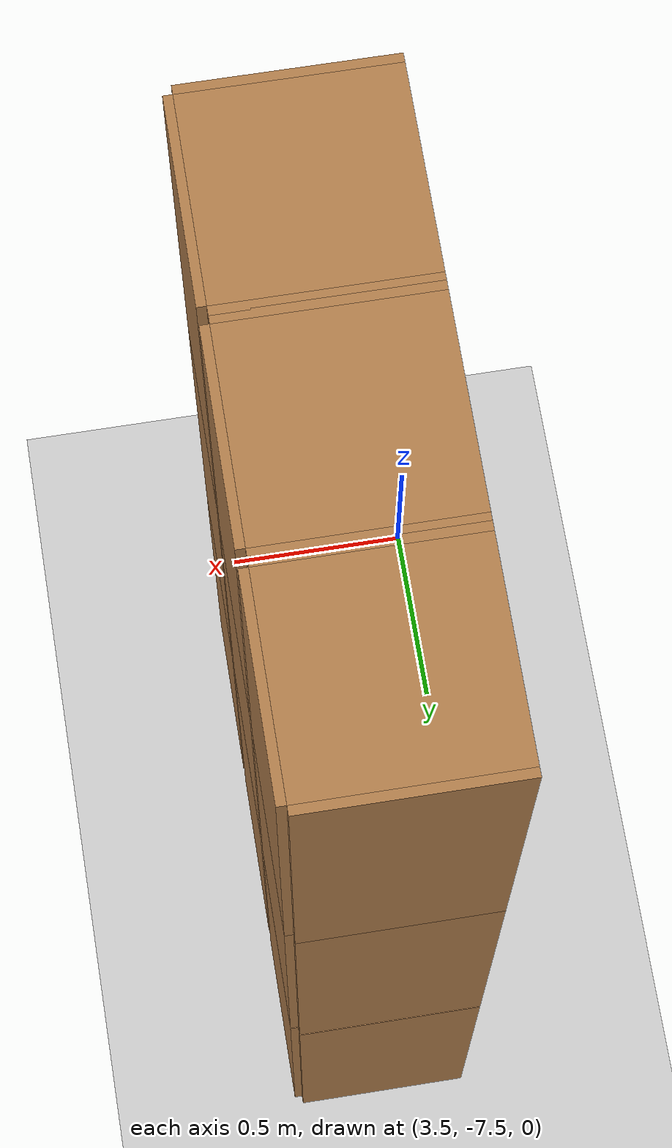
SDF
<sdf version="1.6">
 <world name="default">
  <model name="ground_plane">
   <static>1</static>
   <link name="link">
    <collision name="collision">
     <geometry><plane><normal>0 0 1</normal><size>100 100</size></plane></geometry>
     <surface>
      <contact><collide_bitmask>65535</collide_bitmask></contact>
      <friction><ode><mu>100</mu><mu2>50</mu2></ode></friction>
     </surface>
    </collision>
    <visual name="visual">
     <cast_shadows>0</cast_shadows>
     <geometry><plane><normal>0 0 1</normal><size>100 100</size></plane></geometry>
     <material>
      <script><uri>file://media/materials/scripts/gazebo.material</uri><name>Gazebo/Grey</name></script>
     </material>
    </visual>
   </link>
  </model>
  <model name="Locker18_clone_0">
   <model name="Locker18">
    <model name="Locker3">
     <model name="cabinet">
      <static>1</static>
      <link name="cabinet_bottom_plate">
       <inertial>
        <pose>0 0 -1 0 -0 0</pose>
        <inertia><ixx>2.05</ixx><ixy>0</ixy><ixz>0</ixz><iyy>2.05</iyy><iyz>0</iyz><izz>2.05</izz></inertia>
        <mass>25</mass>
       </inertial>
       <collision name="cabinet_bottom_plate_geom">
        <pose>0 0 0.01 0 -0 0</pose>
        <geometry><box><size>0.45 0.45 0.02</size></box></geometry>
       </collision>
       <visual name="cabinet_bottom_plate_geom_visual">
        <pose>0 0 0.01 0 -0 0</pose>
        <geometry><box><size>0.45 0.45 0.02</size></box></geometry>
        <material>
         <script><uri>file://media/materials/scripts/gazebo.material</uri><name>Gazebo/Wood</name></script>
        </material>
       </visual>
       <collision name="cabinet_bottom_plate_geom_cabinet_back_plate">
        <pose>0.235 0 0.51 0 -0 0</pose>
        <geometry><box><size>0.02 0.45 1.02</size></box></geometry>
       </collision>
       <visual name="cabinet_bottom_plate_geom_cabinet_back_plate_visual">
        <pose>0.235 0 0.51 0 -0 0</pose>
        <geometry><box><size>0.02 0.45 1.02</size></box></geometry>
        <material>
         <script><uri>file://media/materials/scripts/gazebo.material</uri><name>Gazebo/Wood</name></script>
        </material>
       </visual>
       <collision name="cabinet_bottom_plate_geom_cabinet_left_plate">
        <pose>0 0.235 0.51 0 -0 0</pose>
        <geometry><box><size>0.45 0.02 1.02</size></box></geometry>
       </collision>
       <visual name="cabinet_bottom_plate_geom_cabinet_left_plate_visual">
        <pose>0 0.235 0.51 0 -0 0</pose>
        <geometry><box><size>0.45 0.02 1.02</size></box></geometry>
        <material>
         <script><uri>file://media/materials/scripts/gazebo.material</uri><name>Gazebo/Wood</name></script>
        </material>
       </visual>
       <collision name="cabinet_bottom_plate_geom_cabinet_middle_plate">
        <pose>0 0 0.51 0 -0 0</pose>
        <geometry><box><size>0.45 0.45 0.02</size></box></geometry>
       </collision>
       <visual name="cabinet_bottom_plate_geom_cabinet_middle_plate_visual">
        <pose>0 0 0.51 0 -0 0</pose>
        <geometry><box><size>0.45 0.45 0.02</size></box></geometry>
        <material>
         <script><uri>file://media/materials/scripts/gazebo.material</uri><name>Gazebo/Wood</name></script>
        </material>
       </visual>
       <collision name="cabinet_bottom_plate_geom_cabinet_right_plate">
        <pose>0 -0.235 0.51 0 -0 0</pose>
        <geometry><box><size>0.45 0.02 1.02</size></box></geometry>
       </collision>
       <visual name="cabinet_bottom_plate_geom_cabinet_right_plate_visual">
        <pose>0 -0.235 0.51 0 -0 0</pose>
        <geometry><box><size>0.45 0.02 1.02</size></box></geometry>
        <material>
         <script><uri>file://media/materials/scripts/gazebo.material</uri><name>Gazebo/Wood</name></script>
        </material>
       </visual>
       <collision name="cabinet_bottom_plate_geom_cabinet_top_plate">
        <pose>0 0 1.01 0 -0 0</pose>
        <geometry><box><size>0.45 0.45 0.02</size></box></geometry>
       </collision>
       <visual name="cabinet_bottom_plate_geom_cabinet_top_plate_visual">
        <pose>0 0 1.01 0 -0 0</pose>
        <geometry><box><size>0.45 0.45 0.02</size></box></geometry>
        <material>
         <script><uri>file://media/materials/scripts/gazebo.material</uri><name>Gazebo/Wood</name></script>
        </material>
       </visual>
      </link>
      <pose>-0.676968 1.45758 0 0 -0 0</pose>
     </model>
     <model name="cabinet_clone">
      <static>1</static>
      <link name="cabinet_bottom_plate">
       <inertial>
        <pose>0 0 -1 0 -0 0</pose>
        <inertia><ixx>2.05</ixx><ixy>0</ixy><ixz>0</ixz><iyy>2.05</iyy><iyz>0</iyz><izz>2.05</izz></inertia>
        <mass>25</mass>
       </inertial>
       <collision name="cabinet_bottom_plate_geom">
        <pose>0 0 0.01 0 -0 0</pose>
        <geometry><box><size>0.45 0.45 0.02</size></box></geometry>
       </collision>
       <visual name="cabinet_bottom_plate_geom_visual">
        <pose>0 0 0.01 0 -0 0</pose>
        <geometry><box><size>0.45 0.45 0.02</size></box></geometry>
        <material>
         <script><uri>file://media/materials/scripts/gazebo.material</uri><name>Gazebo/Wood</name></script>
        </material>
       </visual>
       <collision name="cabinet_bottom_plate_geom_cabinet_back_plate">
        <pose>0.235 0 0.51 0 -0 0</pose>
        <geometry><box><size>0.02 0.45 1.02</size></box></geometry>
       </collision>
       <visual name="cabinet_bottom_plate_geom_cabinet_back_plate_visual">
        <pose>0.235 0 0.51 0 -0 0</pose>
        <geometry><box><size>0.02 0.45 1.02</size></box></geometry>
        <material>
         <script><uri>file://media/materials/scripts/gazebo.material</uri><name>Gazebo/Wood</name></script>
        </material>
       </visual>
       <collision name="cabinet_bottom_plate_geom_cabinet_left_plate">
        <pose>0 0.235 0.51 0 -0 0</pose>
        <geometry><box><size>0.45 0.02 1.02</size></box></geometry>
       </collision>
       <visual name="cabinet_bottom_plate_geom_cabinet_left_plate_visual">
        <pose>0 0.235 0.51 0 -0 0</pose>
        <geometry><box><size>0.45 0.02 1.02</size></box></geometry>
        <material>
         <script><uri>file://media/materials/scripts/gazebo.material</uri><name>Gazebo/Wood</name></script>
        </material>
       </visual>
       <collision name="cabinet_bottom_plate_geom_cabinet_middle_plate">
        <pose>0 0 0.51 0 -0 0</pose>
        <geometry><box><size>0.45 0.45 0.02</size></box></geometry>
       </collision>
       <visual name="cabinet_bottom_plate_geom_cabinet_middle_plate_visual">
        <pose>0 0 0.51 0 -0 0</pose>
        <geometry><box><size>0.45 0.45 0.02</size></box></geometry>
        <material>
         <script><uri>file://media/materials/scripts/gazebo.material</uri><name>Gazebo/Wood</name></script>
        </material>
       </visual>
       <collision name="cabinet_bottom_plate_geom_cabinet_right_plate">
        <pose>0 -0.235 0.51 0 -0 0</pose>
        <geometry><box><size>0.45 0.02 1.02</size></box></geometry>
       </collision>
       <visual name="cabinet_bottom_plate_geom_cabinet_right_plate_visual">
        <pose>0 -0.235 0.51 0 -0 0</pose>
        <geometry><box><size>0.45 0.02 1.02</size></box></geometry>
        <material>
         <script><uri>file://media/materials/scripts/gazebo.material</uri><name>Gazebo/Wood</name></script>
        </material>
       </visual>
       <collision name="cabinet_bottom_plate_geom_cabinet_top_plate">
        <pose>0 0 1.01 0 -0 0</pose>
        <geometry><box><size>0.45 0.45 0.02</size></box></geometry>
       </collision>
       <visual name="cabinet_bottom_plate_geom_cabinet_top_plate_visual">
        <pose>0 0 1.01 0 -0 0</pose>
        <geometry><box><size>0.45 0.45 0.02</size></box></geometry>
        <material>
         <script><uri>file://media/materials/scripts/gazebo.material</uri><name>Gazebo/Wood</name></script>
        </material>
       </visual>
      </link>
      <pose>-0.676968 0.970971 0 0 -0 0</pose>
     </model>
     <model name="cabinet_clone_0">
      <static>1</static>
      <link name="cabinet_bottom_plate">
       <inertial>
        <pose>0 0 -1 0 -0 0</pose>
        <inertia><ixx>2.05</ixx><ixy>0</ixy><ixz>0</ixz><iyy>2.05</iyy><iyz>0</iyz><izz>2.05</izz></inertia>
        <mass>25</mass>
       </inertial>
       <collision name="cabinet_bottom_plate_geom">
        <pose>0 0 0.01 0 -0 0</pose>
        <geometry><box><size>0.45 0.45 0.02</size></box></geometry>
       </collision>
       <visual name="cabinet_bottom_plate_geom_visual">
        <pose>0 0 0.01 0 -0 0</pose>
        <geometry><box><size>0.45 0.45 0.02</size></box></geometry>
        <material>
         <script><uri>file://media/materials/scripts/gazebo.material</uri><name>Gazebo/Wood</name></script>
        </material>
       </visual>
       <collision name="cabinet_bottom_plate_geom_cabinet_back_plate">
        <pose>0.235 0 0.51 0 -0 0</pose>
        <geometry><box><size>0.02 0.45 1.02</size></box></geometry>
       </collision>
       <visual name="cabinet_bottom_plate_geom_cabinet_back_plate_visual">
        <pose>0.235 0 0.51 0 -0 0</pose>
        <geometry><box><size>0.02 0.45 1.02</size></box></geometry>
        <material>
         <script><uri>file://media/materials/scripts/gazebo.material</uri><name>Gazebo/Wood</name></script>
        </material>
       </visual>
       <collision name="cabinet_bottom_plate_geom_cabinet_left_plate">
        <pose>0 0.235 0.51 0 -0 0</pose>
        <geometry><box><size>0.45 0.02 1.02</size></box></geometry>
       </collision>
       <visual name="cabinet_bottom_plate_geom_cabinet_left_plate_visual">
        <pose>0 0.235 0.51 0 -0 0</pose>
        <geometry><box><size>0.45 0.02 1.02</size></box></geometry>
        <material>
         <script><uri>file://media/materials/scripts/gazebo.material</uri><name>Gazebo/Wood</name></script>
        </material>
       </visual>
       <collision name="cabinet_bottom_plate_geom_cabinet_middle_plate">
        <pose>0 0 0.51 0 -0 0</pose>
        <geometry><box><size>0.45 0.45 0.02</size></box></geometry>
       </collision>
       <visual name="cabinet_bottom_plate_geom_cabinet_middle_plate_visual">
        <pose>0 0 0.51 0 -0 0</pose>
        <geometry><box><size>0.45 0.45 0.02</size></box></geometry>
        <material>
         <script><uri>file://media/materials/scripts/gazebo.material</uri><name>Gazebo/Wood</name></script>
        </material>
       </visual>
       <collision name="cabinet_bottom_plate_geom_cabinet_right_plate">
        <pose>0 -0.235 0.51 0 -0 0</pose>
        <geometry><box><size>0.45 0.02 1.02</size></box></geometry>
       </collision>
       <visual name="cabinet_bottom_plate_geom_cabinet_right_plate_visual">
        <pose>0 -0.235 0.51 0 -0 0</pose>
        <geometry><box><size>0.45 0.02 1.02</size></box></geometry>
        <material>
         <script><uri>file://media/materials/scripts/gazebo.material</uri><name>Gazebo/Wood</name></script>
        </material>
       </visual>
       <collision name="cabinet_bottom_plate_geom_cabinet_top_plate">
        <pose>0 0 1.01 0 -0 0</pose>
        <geometry><box><size>0.45 0.45 0.02</size></box></geometry>
       </collision>
       <visual name="cabinet_bottom_plate_geom_cabinet_top_plate_visual">
        <pose>0 0 1.01 0 -0 0</pose>
        <geometry><box><size>0.45 0.45 0.02</size></box></geometry>
        <material>
         <script><uri>file://media/materials/scripts/gazebo.material</uri><name>Gazebo/Wood</name></script>
        </material>
       </visual>
      </link>
      <pose>-0.676968 0.48391 0 0 -0 0</pose>
     </model>
     <static>0</static>
     <pose>0 3e-06 -1.02763 0 -0 0</pose>
    </model>
    <model name="Locker3_clone">
     <model name="cabinet">
      <static>1</static>
      <link name="cabinet_bottom_plate">
       <inertial>
        <pose>0 0 -1 0 -0 0</pose>
        <inertia><ixx>2.05</ixx><ixy>0</ixy><ixz>0</ixz><iyy>2.05</iyy><iyz>0</iyz><izz>2.05</izz></inertia>
        <mass>25</mass>
       </inertial>
       <collision name="cabinet_bottom_plate_geom">
        <pose>0 0 0.01 0 -0 0</pose>
        <geometry><box><size>0.45 0.45 0.02</size></box></geometry>
       </collision>
       <visual name="cabinet_bottom_plate_geom_visual">
        <pose>0 0 0.01 0 -0 0</pose>
        <geometry><box><size>0.45 0.45 0.02</size></box></geometry>
        <material>
         <script><uri>file://media/materials/scripts/gazebo.material</uri><name>Gazebo/Wood</name></script>
        </material>
       </visual>
       <collision name="cabinet_bottom_plate_geom_cabinet_back_plate">
        <pose>0.235 0 0.51 0 -0 0</pose>
        <geometry><box><size>0.02 0.45 1.02</size></box></geometry>
       </collision>
       <visual name="cabinet_bottom_plate_geom_cabinet_back_plate_visual">
        <pose>0.235 0 0.51 0 -0 0</pose>
        <geometry><box><size>0.02 0.45 1.02</size></box></geometry>
        <material>
         <script><uri>file://media/materials/scripts/gazebo.material</uri><name>Gazebo/Wood</name></script>
        </material>
       </visual>
       <collision name="cabinet_bottom_plate_geom_cabinet_left_plate">
        <pose>0 0.235 0.51 0 -0 0</pose>
        <geometry><box><size>0.45 0.02 1.02</size></box></geometry>
       </collision>
       <visual name="cabinet_bottom_plate_geom_cabinet_left_plate_visual">
        <pose>0 0.235 0.51 0 -0 0</pose>
        <geometry><box><size>0.45 0.02 1.02</size></box></geometry>
        <material>
         <script><uri>file://media/materials/scripts/gazebo.material</uri><name>Gazebo/Wood</name></script>
        </material>
       </visual>
       <collision name="cabinet_bottom_plate_geom_cabinet_middle_plate">
        <pose>0 0 0.51 0 -0 0</pose>
        <geometry><box><size>0.45 0.45 0.02</size></box></geometry>
       </collision>
       <visual name="cabinet_bottom_plate_geom_cabinet_middle_plate_visual">
        <pose>0 0 0.51 0 -0 0</pose>
        <geometry><box><size>0.45 0.45 0.02</size></box></geometry>
        <material>
         <script><uri>file://media/materials/scripts/gazebo.material</uri><name>Gazebo/Wood</name></script>
        </material>
       </visual>
       <collision name="cabinet_bottom_plate_geom_cabinet_right_plate">
        <pose>0 -0.235 0.51 0 -0 0</pose>
        <geometry><box><size>0.45 0.02 1.02</size></box></geometry>
       </collision>
       <visual name="cabinet_bottom_plate_geom_cabinet_right_plate_visual">
        <pose>0 -0.235 0.51 0 -0 0</pose>
        <geometry><box><size>0.45 0.02 1.02</size></box></geometry>
        <material>
         <script><uri>file://media/materials/scripts/gazebo.material</uri><name>Gazebo/Wood</name></script>
        </material>
       </visual>
       <collision name="cabinet_bottom_plate_geom_cabinet_top_plate">
        <pose>0 0 1.01 0 -0 0</pose>
        <geometry><box><size>0.45 0.45 0.02</size></box></geometry>
       </collision>
       <visual name="cabinet_bottom_plate_geom_cabinet_top_plate_visual">
        <pose>0 0 1.01 0 -0 0</pose>
        <geometry><box><size>0.45 0.45 0.02</size></box></geometry>
        <material>
         <script><uri>file://media/materials/scripts/gazebo.material</uri><name>Gazebo/Wood</name></script>
        </material>
       </visual>
      </link>
      <pose>-0.676968 1.45758 0 0 -0 0</pose>
     </model>
     <model name="cabinet_clone">
      <static>1</static>
      <link name="cabinet_bottom_plate">
       <inertial>
        <pose>0 0 -1 0 -0 0</pose>
        <inertia><ixx>2.05</ixx><ixy>0</ixy><ixz>0</ixz><iyy>2.05</iyy><iyz>0</iyz><izz>2.05</izz></inertia>
        <mass>25</mass>
       </inertial>
       <collision name="cabinet_bottom_plate_geom">
        <pose>0 0 0.01 0 -0 0</pose>
        <geometry><box><size>0.45 0.45 0.02</size></box></geometry>
       </collision>
       <visual name="cabinet_bottom_plate_geom_visual">
        <pose>0 0 0.01 0 -0 0</pose>
        <geometry><box><size>0.45 0.45 0.02</size></box></geometry>
        <material>
         <script><uri>file://media/materials/scripts/gazebo.material</uri><name>Gazebo/Wood</name></script>
        </material>
       </visual>
       <collision name="cabinet_bottom_plate_geom_cabinet_back_plate">
        <pose>0.235 0 0.51 0 -0 0</pose>
        <geometry><box><size>0.02 0.45 1.02</size></box></geometry>
       </collision>
       <visual name="cabinet_bottom_plate_geom_cabinet_back_plate_visual">
        <pose>0.235 0 0.51 0 -0 0</pose>
        <geometry><box><size>0.02 0.45 1.02</size></box></geometry>
        <material>
         <script><uri>file://media/materials/scripts/gazebo.material</uri><name>Gazebo/Wood</name></script>
        </material>
       </visual>
       <collision name="cabinet_bottom_plate_geom_cabinet_left_plate">
        <pose>0 0.235 0.51 0 -0 0</pose>
        <geometry><box><size>0.45 0.02 1.02</size></box></geometry>
       </collision>
       <visual name="cabinet_bottom_plate_geom_cabinet_left_plate_visual">
        <pose>0 0.235 0.51 0 -0 0</pose>
        <geometry><box><size>0.45 0.02 1.02</size></box></geometry>
        <material>
         <script><uri>file://media/materials/scripts/gazebo.material</uri><name>Gazebo/Wood</name></script>
        </material>
       </visual>
       <collision name="cabinet_bottom_plate_geom_cabinet_middle_plate">
        <pose>0 0 0.51 0 -0 0</pose>
        <geometry><box><size>0.45 0.45 0.02</size></box></geometry>
       </collision>
       <visual name="cabinet_bottom_plate_geom_cabinet_middle_plate_visual">
        <pose>0 0 0.51 0 -0 0</pose>
        <geometry><box><size>0.45 0.45 0.02</size></box></geometry>
        <material>
         <script><uri>file://media/materials/scripts/gazebo.material</uri><name>Gazebo/Wood</name></script>
        </material>
       </visual>
       <collision name="cabinet_bottom_plate_geom_cabinet_right_plate">
        <pose>0 -0.235 0.51 0 -0 0</pose>
        <geometry><box><size>0.45 0.02 1.02</size></box></geometry>
       </collision>
       <visual name="cabinet_bottom_plate_geom_cabinet_right_plate_visual">
        <pose>0 -0.235 0.51 0 -0 0</pose>
        <geometry><box><size>0.45 0.02 1.02</size></box></geometry>
        <material>
         <script><uri>file://media/materials/scripts/gazebo.material</uri><name>Gazebo/Wood</name></script>
        </material>
       </visual>
       <collision name="cabinet_bottom_plate_geom_cabinet_top_plate">
        <pose>0 0 1.01 0 -0 0</pose>
        <geometry><box><size>0.45 0.45 0.02</size></box></geometry>
       </collision>
       <visual name="cabinet_bottom_plate_geom_cabinet_top_plate_visual">
        <pose>0 0 1.01 0 -0 0</pose>
        <geometry><box><size>0.45 0.45 0.02</size></box></geometry>
        <material>
         <script><uri>file://media/materials/scripts/gazebo.material</uri><name>Gazebo/Wood</name></script>
        </material>
       </visual>
      </link>
      <pose>-0.676968 0.970971 0 0 -0 0</pose>
     </model>
     <model name="cabinet_clone_0">
      <static>1</static>
      <link name="cabinet_bottom_plate">
       <inertial>
        <pose>0 0 -1 0 -0 0</pose>
        <inertia><ixx>2.05</ixx><ixy>0</ixy><ixz>0</ixz><iyy>2.05</iyy><iyz>0</iyz><izz>2.05</izz></inertia>
        <mass>25</mass>
       </inertial>
       <collision name="cabinet_bottom_plate_geom">
        <pose>0 0 0.01 0 -0 0</pose>
        <geometry><box><size>0.45 0.45 0.02</size></box></geometry>
       </collision>
       <visual name="cabinet_bottom_plate_geom_visual">
        <pose>0 0 0.01 0 -0 0</pose>
        <geometry><box><size>0.45 0.45 0.02</size></box></geometry>
        <material>
         <script><uri>file://media/materials/scripts/gazebo.material</uri><name>Gazebo/Wood</name></script>
        </material>
       </visual>
       <collision name="cabinet_bottom_plate_geom_cabinet_back_plate">
        <pose>0.235 0 0.51 0 -0 0</pose>
        <geometry><box><size>0.02 0.45 1.02</size></box></geometry>
       </collision>
       <visual name="cabinet_bottom_plate_geom_cabinet_back_plate_visual">
        <pose>0.235 0 0.51 0 -0 0</pose>
        <geometry><box><size>0.02 0.45 1.02</size></box></geometry>
        <material>
         <script><uri>file://media/materials/scripts/gazebo.material</uri><name>Gazebo/Wood</name></script>
        </material>
       </visual>
       <collision name="cabinet_bottom_plate_geom_cabinet_left_plate">
        <pose>0 0.235 0.51 0 -0 0</pose>
        <geometry><box><size>0.45 0.02 1.02</size></box></geometry>
       </collision>
       <visual name="cabinet_bottom_plate_geom_cabinet_left_plate_visual">
        <pose>0 0.235 0.51 0 -0 0</pose>
        <geometry><box><size>0.45 0.02 1.02</size></box></geometry>
        <material>
         <script><uri>file://media/materials/scripts/gazebo.material</uri><name>Gazebo/Wood</name></script>
        </material>
       </visual>
       <collision name="cabinet_bottom_plate_geom_cabinet_middle_plate">
        <pose>0 0 0.51 0 -0 0</pose>
        <geometry><box><size>0.45 0.45 0.02</size></box></geometry>
       </collision>
       <visual name="cabinet_bottom_plate_geom_cabinet_middle_plate_visual">
        <pose>0 0 0.51 0 -0 0</pose>
        <geometry><box><size>0.45 0.45 0.02</size></box></geometry>
        <material>
         <script><uri>file://media/materials/scripts/gazebo.material</uri><name>Gazebo/Wood</name></script>
        </material>
       </visual>
       <collision name="cabinet_bottom_plate_geom_cabinet_right_plate">
        <pose>0 -0.235 0.51 0 -0 0</pose>
        <geometry><box><size>0.45 0.02 1.02</size></box></geometry>
       </collision>
       <visual name="cabinet_bottom_plate_geom_cabinet_right_plate_visual">
        <pose>0 -0.235 0.51 0 -0 0</pose>
        <geometry><box><size>0.45 0.02 1.02</size></box></geometry>
        <material>
         <script><uri>file://media/materials/scripts/gazebo.material</uri><name>Gazebo/Wood</name></script>
        </material>
       </visual>
       <collision name="cabinet_bottom_plate_geom_cabinet_top_plate">
        <pose>0 0 1.01 0 -0 0</pose>
        <geometry><box><size>0.45 0.45 0.02</size></box></geometry>
       </collision>
       <visual name="cabinet_bottom_plate_geom_cabinet_top_plate_visual">
        <pose>0 0 1.01 0 -0 0</pose>
        <geometry><box><size>0.45 0.45 0.02</size></box></geometry>
        <material>
         <script><uri>file://media/materials/scripts/gazebo.material</uri><name>Gazebo/Wood</name></script>
        </material>
       </visual>
      </link>
      <pose>-0.676968 0.48391 0 0 -0 0</pose>
     </model>
     <static>0</static>
     <pose>0 3e-06 0.003717 0 -0 0</pose>
    </model>
    <model name="Locker3_clone_clone">
     <model name="cabinet">
      <static>1</static>
      <link name="cabinet_bottom_plate">
       <inertial>
        <pose>0 0 -1 0 -0 0</pose>
        <inertia><ixx>2.05</ixx><ixy>0</ixy><ixz>0</ixz><iyy>2.05</iyy><iyz>0</iyz><izz>2.05</izz></inertia>
        <mass>25</mass>
       </inertial>
       <collision name="cabinet_bottom_plate_geom">
        <pose>0 0 0.01 0 -0 0</pose>
        <geometry><box><size>0.45 0.45 0.02</size></box></geometry>
       </collision>
       <visual name="cabinet_bottom_plate_geom_visual">
        <pose>0 0 0.01 0 -0 0</pose>
        <geometry><box><size>0.45 0.45 0.02</size></box></geometry>
        <material>
         <script><uri>file://media/materials/scripts/gazebo.material</uri><name>Gazebo/Wood</name></script>
        </material>
       </visual>
       <collision name="cabinet_bottom_plate_geom_cabinet_back_plate">
        <pose>0.235 0 0.51 0 -0 0</pose>
        <geometry><box><size>0.02 0.45 1.02</size></box></geometry>
       </collision>
       <visual name="cabinet_bottom_plate_geom_cabinet_back_plate_visual">
        <pose>0.235 0 0.51 0 -0 0</pose>
        <geometry><box><size>0.02 0.45 1.02</size></box></geometry>
        <material>
         <script><uri>file://media/materials/scripts/gazebo.material</uri><name>Gazebo/Wood</name></script>
        </material>
       </visual>
       <collision name="cabinet_bottom_plate_geom_cabinet_left_plate">
        <pose>0 0.235 0.51 0 -0 0</pose>
        <geometry><box><size>0.45 0.02 1.02</size></box></geometry>
       </collision>
       <visual name="cabinet_bottom_plate_geom_cabinet_left_plate_visual">
        <pose>0 0.235 0.51 0 -0 0</pose>
        <geometry><box><size>0.45 0.02 1.02</size></box></geometry>
        <material>
         <script><uri>file://media/materials/scripts/gazebo.material</uri><name>Gazebo/Wood</name></script>
        </material>
       </visual>
       <collision name="cabinet_bottom_plate_geom_cabinet_middle_plate">
        <pose>0 0 0.51 0 -0 0</pose>
        <geometry><box><size>0.45 0.45 0.02</size></box></geometry>
       </collision>
       <visual name="cabinet_bottom_plate_geom_cabinet_middle_plate_visual">
        <pose>0 0 0.51 0 -0 0</pose>
        <geometry><box><size>0.45 0.45 0.02</size></box></geometry>
        <material>
         <script><uri>file://media/materials/scripts/gazebo.material</uri><name>Gazebo/Wood</name></script>
        </material>
       </visual>
       <collision name="cabinet_bottom_plate_geom_cabinet_right_plate">
        <pose>0 -0.235 0.51 0 -0 0</pose>
        <geometry><box><size>0.45 0.02 1.02</size></box></geometry>
       </collision>
       <visual name="cabinet_bottom_plate_geom_cabinet_right_plate_visual">
        <pose>0 -0.235 0.51 0 -0 0</pose>
        <geometry><box><size>0.45 0.02 1.02</size></box></geometry>
        <material>
         <script><uri>file://media/materials/scripts/gazebo.material</uri><name>Gazebo/Wood</name></script>
        </material>
       </visual>
       <collision name="cabinet_bottom_plate_geom_cabinet_top_plate">
        <pose>0 0 1.01 0 -0 0</pose>
        <geometry><box><size>0.45 0.45 0.02</size></box></geometry>
       </collision>
       <visual name="cabinet_bottom_plate_geom_cabinet_top_plate_visual">
        <pose>0 0 1.01 0 -0 0</pose>
        <geometry><box><size>0.45 0.45 0.02</size></box></geometry>
        <material>
         <script><uri>file://media/materials/scripts/gazebo.material</uri><name>Gazebo/Wood</name></script>
        </material>
       </visual>
      </link>
      <pose>-0.676968 1.45758 0 0 -0 0</pose>
     </model>
     <model name="cabinet_clone">
      <static>1</static>
      <link name="cabinet_bottom_plate">
       <inertial>
        <pose>0 0 -1 0 -0 0</pose>
        <inertia><ixx>2.05</ixx><ixy>0</ixy><ixz>0</ixz><iyy>2.05</iyy><iyz>0</iyz><izz>2.05</izz></inertia>
        <mass>25</mass>
       </inertial>
       <collision name="cabinet_bottom_plate_geom">
        <pose>0 0 0.01 0 -0 0</pose>
        <geometry><box><size>0.45 0.45 0.02</size></box></geometry>
       </collision>
       <visual name="cabinet_bottom_plate_geom_visual">
        <pose>0 0 0.01 0 -0 0</pose>
        <geometry><box><size>0.45 0.45 0.02</size></box></geometry>
        <material>
         <script><uri>file://media/materials/scripts/gazebo.material</uri><name>Gazebo/Wood</name></script>
        </material>
       </visual>
       <collision name="cabinet_bottom_plate_geom_cabinet_back_plate">
        <pose>0.235 0 0.51 0 -0 0</pose>
        <geometry><box><size>0.02 0.45 1.02</size></box></geometry>
       </collision>
       <visual name="cabinet_bottom_plate_geom_cabinet_back_plate_visual">
        <pose>0.235 0 0.51 0 -0 0</pose>
        <geometry><box><size>0.02 0.45 1.02</size></box></geometry>
        <material>
         <script><uri>file://media/materials/scripts/gazebo.material</uri><name>Gazebo/Wood</name></script>
        </material>
       </visual>
       <collision name="cabinet_bottom_plate_geom_cabinet_left_plate">
        <pose>0 0.235 0.51 0 -0 0</pose>
        <geometry><box><size>0.45 0.02 1.02</size></box></geometry>
       </collision>
       <visual name="cabinet_bottom_plate_geom_cabinet_left_plate_visual">
        <pose>0 0.235 0.51 0 -0 0</pose>
        <geometry><box><size>0.45 0.02 1.02</size></box></geometry>
        <material>
         <script><uri>file://media/materials/scripts/gazebo.material</uri><name>Gazebo/Wood</name></script>
        </material>
       </visual>
       <collision name="cabinet_bottom_plate_geom_cabinet_middle_plate">
        <pose>0 0 0.51 0 -0 0</pose>
        <geometry><box><size>0.45 0.45 0.02</size></box></geometry>
       </collision>
       <visual name="cabinet_bottom_plate_geom_cabinet_middle_plate_visual">
        <pose>0 0 0.51 0 -0 0</pose>
        <geometry><box><size>0.45 0.45 0.02</size></box></geometry>
        <material>
         <script><uri>file://media/materials/scripts/gazebo.material</uri><name>Gazebo/Wood</name></script>
        </material>
       </visual>
       <collision name="cabinet_bottom_plate_geom_cabinet_right_plate">
        <pose>0 -0.235 0.51 0 -0 0</pose>
        <geometry><box><size>0.45 0.02 1.02</size></box></geometry>
       </collision>
       <visual name="cabinet_bottom_plate_geom_cabinet_right_plate_visual">
        <pose>0 -0.235 0.51 0 -0 0</pose>
        <geometry><box><size>0.45 0.02 1.02</size></box></geometry>
        <material>
         <script><uri>file://media/materials/scripts/gazebo.material</uri><name>Gazebo/Wood</name></script>
        </material>
       </visual>
       <collision name="cabinet_bottom_plate_geom_cabinet_top_plate">
        <pose>0 0 1.01 0 -0 0</pose>
        <geometry><box><size>0.45 0.45 0.02</size></box></geometry>
       </collision>
       <visual name="cabinet_bottom_plate_geom_cabinet_top_plate_visual">
        <pose>0 0 1.01 0 -0 0</pose>
        <geometry><box><size>0.45 0.45 0.02</size></box></geometry>
        <material>
         <script><uri>file://media/materials/scripts/gazebo.material</uri><name>Gazebo/Wood</name></script>
        </material>
       </visual>
      </link>
      <pose>-0.676968 0.970971 0 0 -0 0</pose>
     </model>
     <model name="cabinet_clone_0">
      <static>1</static>
      <link name="cabinet_bottom_plate">
       <inertial>
        <pose>0 0 -1 0 -0 0</pose>
        <inertia><ixx>2.05</ixx><ixy>0</ixy><ixz>0</ixz><iyy>2.05</iyy><iyz>0</iyz><izz>2.05</izz></inertia>
        <mass>25</mass>
       </inertial>
       <collision name="cabinet_bottom_plate_geom">
        <pose>0 0 0.01 0 -0 0</pose>
        <geometry><box><size>0.45 0.45 0.02</size></box></geometry>
       </collision>
       <visual name="cabinet_bottom_plate_geom_visual">
        <pose>0 0 0.01 0 -0 0</pose>
        <geometry><box><size>0.45 0.45 0.02</size></box></geometry>
        <material>
         <script><uri>file://media/materials/scripts/gazebo.material</uri><name>Gazebo/Wood</name></script>
        </material>
       </visual>
       <collision name="cabinet_bottom_plate_geom_cabinet_back_plate">
        <pose>0.235 0 0.51 0 -0 0</pose>
        <geometry><box><size>0.02 0.45 1.02</size></box></geometry>
       </collision>
       <visual name="cabinet_bottom_plate_geom_cabinet_back_plate_visual">
        <pose>0.235 0 0.51 0 -0 0</pose>
        <geometry><box><size>0.02 0.45 1.02</size></box></geometry>
        <material>
         <script><uri>file://media/materials/scripts/gazebo.material</uri><name>Gazebo/Wood</name></script>
        </material>
       </visual>
       <collision name="cabinet_bottom_plate_geom_cabinet_left_plate">
        <pose>0 0.235 0.51 0 -0 0</pose>
        <geometry><box><size>0.45 0.02 1.02</size></box></geometry>
       </collision>
       <visual name="cabinet_bottom_plate_geom_cabinet_left_plate_visual">
        <pose>0 0.235 0.51 0 -0 0</pose>
        <geometry><box><size>0.45 0.02 1.02</size></box></geometry>
        <material>
         <script><uri>file://media/materials/scripts/gazebo.material</uri><name>Gazebo/Wood</name></script>
        </material>
       </visual>
       <collision name="cabinet_bottom_plate_geom_cabinet_middle_plate">
        <pose>0 0 0.51 0 -0 0</pose>
        <geometry><box><size>0.45 0.45 0.02</size></box></geometry>
       </collision>
       <visual name="cabinet_bottom_plate_geom_cabinet_middle_plate_visual">
        <pose>0 0 0.51 0 -0 0</pose>
        <geometry><box><size>0.45 0.45 0.02</size></box></geometry>
        <material>
         <script><uri>file://media/materials/scripts/gazebo.material</uri><name>Gazebo/Wood</name></script>
        </material>
       </visual>
       <collision name="cabinet_bottom_plate_geom_cabinet_right_plate">
        <pose>0 -0.235 0.51 0 -0 0</pose>
        <geometry><box><size>0.45 0.02 1.02</size></box></geometry>
       </collision>
       <visual name="cabinet_bottom_plate_geom_cabinet_right_plate_visual">
        <pose>0 -0.235 0.51 0 -0 0</pose>
        <geometry><box><size>0.45 0.02 1.02</size></box></geometry>
        <material>
         <script><uri>file://media/materials/scripts/gazebo.material</uri><name>Gazebo/Wood</name></script>
        </material>
       </visual>
       <collision name="cabinet_bottom_plate_geom_cabinet_top_plate">
        <pose>0 0 1.01 0 -0 0</pose>
        <geometry><box><size>0.45 0.45 0.02</size></box></geometry>
       </collision>
       <visual name="cabinet_bottom_plate_geom_cabinet_top_plate_visual">
        <pose>0 0 1.01 0 -0 0</pose>
        <geometry><box><size>0.45 0.45 0.02</size></box></geometry>
        <material>
         <script><uri>file://media/materials/scripts/gazebo.material</uri><name>Gazebo/Wood</name></script>
        </material>
       </visual>
      </link>
      <pose>-0.676968 0.48391 0 0 -0 0</pose>
     </model>
     <static>0</static>
     <pose>0 3e-06 1.02391 0 -0 0</pose>
    </model>
    <static>0</static>
    <pose>-0 4e-06 4e-06 0 -0 0</pose>
   </model>
   <static>0</static>
   <pose>4.50277 -7.5487 1.08672 0 -0 0</pose>
  </model>
 </world>
</sdf>
